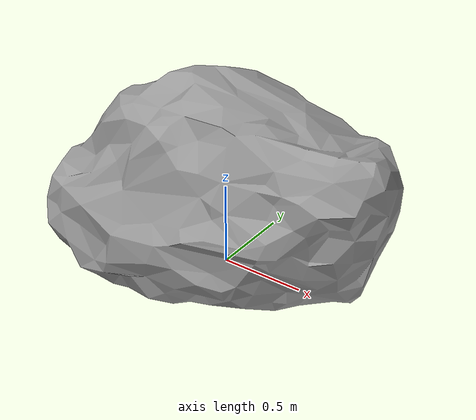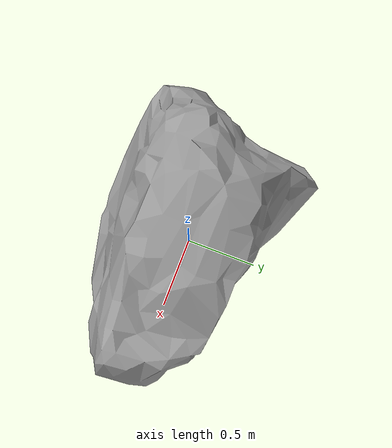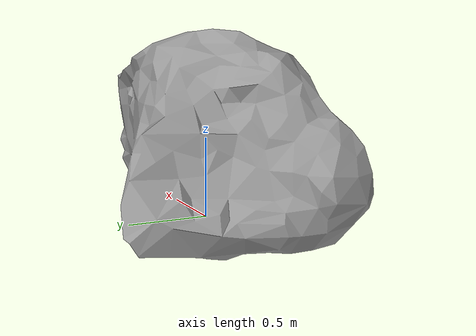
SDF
<?xml version='1.0'?>
<sdf version="1.7">
  <model name="mineral">
    <static>true</static>
    <link name="mineral_link">
      <collision name="mineral_collision">
        <geometry>
          <mesh>
            <uri>/home/brayan/catkin_ws/src/rockbreaker_arm_simulator/rockbreaker_arm_gazebo/models/Mineral/mineral.dae</uri>
          </mesh>
        </geometry>
      </collision>
      <visual name="mineral_visual">
        <geometry>
          <mesh>
            <uri>/home/brayan/catkin_ws/src/rockbreaker_arm_simulator/rockbreaker_arm_gazebo/models/Mineral/mineral.dae</uri>
          </mesh>
         </geometry>
         <material>
          <script>
            <uri>file://media/materials/scripts/gazebo.material</uri>
            <name>Gazebo/Grey</name>
          </script>
        </material>
       </visual>
    </link>
  </model>
</sdf>
